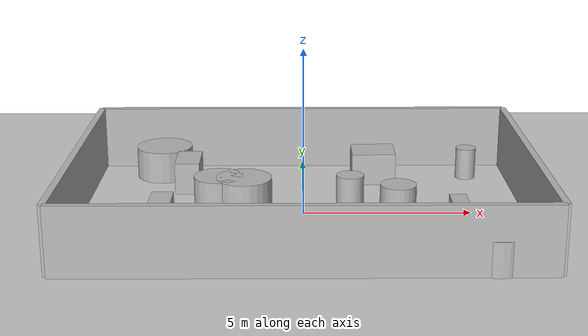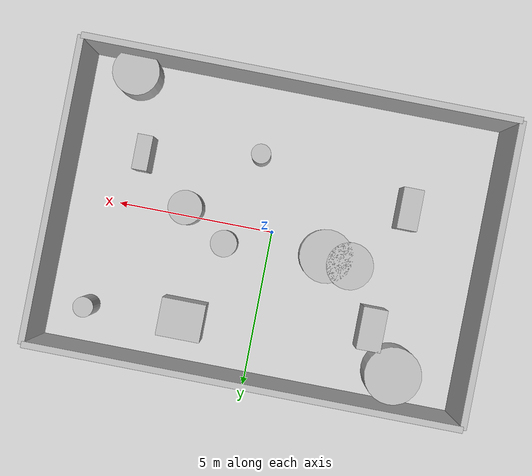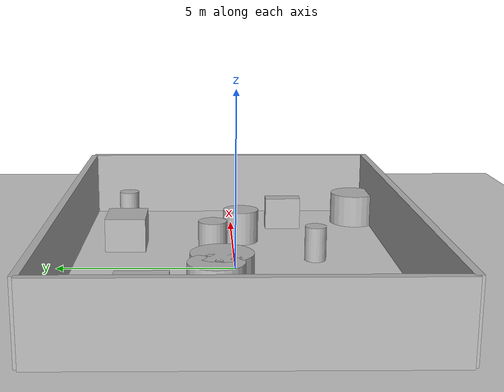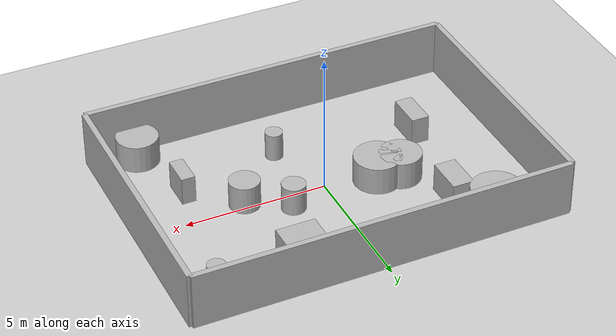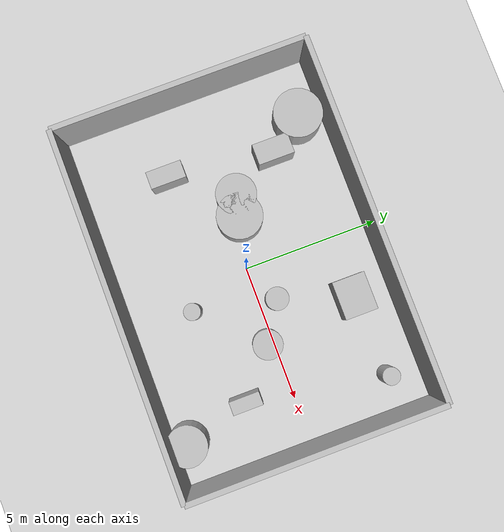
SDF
<?xml version="1.0"?>
<sdf version="1.6">
  <world name="env_75">

    <include><uri>model://ground_plane</uri></include>
    <include><uri>model://sun</uri></include>

    <!-- WALLS -->
    <model name="wall_north"><static>true</static><pose>0 4.67871305353184 1 0 0 0</pose>
      <link name="link"><collision name="collision">
        <geometry><box><size>13.373360814417476 0.2 2</size></box></geometry>
      </collision><visual name="visual">
        <geometry><box><size>13.373360814417476 0.2 2</size></box></geometry>
      </visual></link>
    </model>

    <model name="wall_south"><static>true</static><pose>0 -4.67871305353184 1 0 0 0</pose>
      <link name="link"><collision name="collision">
        <geometry><box><size>13.373360814417476 0.2 2</size></box></geometry>
      </collision><visual name="visual">
        <geometry><box><size>13.373360814417476 0.2 2</size></box></geometry>
      </visual></link>
    </model>

    <model name="wall_east"><static>true</static><pose>6.686680407208738 0 1 0 0 1.57</pose>
      <link name="link"><collision name="collision">
        <geometry><box><size>9.35742610706368 0.2 2</size></box></geometry>
      </collision><visual name="visual">
        <geometry><box><size>9.35742610706368 0.2 2</size></box></geometry>
      </visual></link>
    </model>

    <model name="wall_west"><static>true</static><pose>-6.686680407208738 0 1 0 0 1.57</pose>
      <link name="link"><collision name="collision">
        <geometry><box><size>9.35742610706368 0.2 2</size></box></geometry>
      </collision><visual name="visual">
        <geometry><box><size>9.35742610706368 0.2 2</size></box></geometry>
      </visual></link>
    </model>

    <!-- SENSOR -->

    <model name="lidar_sensor">
      <static>true</static>
      <pose>-0.8095029173299659 1.8671129752514792 0.4 0 0 0</pose>
      <link name="link">
        <sensor name="lidar" type="ray">
          <pose>0 0 0 0 0 0</pose>
          <visualize>true</visualize>
          <always_on>true</always_on>
          <update_rate>10</update_rate>
          <ray>
            <scan><horizontal>
              <samples>90</samples>
              <resolution>1</resolution>
              <min_angle>-3.14159</min_angle>
              <max_angle>3.14159</max_angle>
            </horizontal></scan>
            <range><min>0.15</min><max>20.0</max><resolution>0.01</resolution></range>
          </ray>
          <plugin name="lidar_plugin" filename="liblidar_plugin.so"/>
        </sensor>
      </link>
    </model>

    <!-- OBSTACLES -->

    <model name="obstacle_0">
      <static>true</static>
      <pose>4.423273611558591 -1.6711160250259782 0.5 0 0 0</pose>
      <link name="link">
        <collision name="collision">
          <geometry><box><size>0.49 1.11 1.0</size></box></geometry>
        </collision>
        <visual name="visual">
          <geometry><box><size>0.49 1.11 1.0</size></box></geometry>
        </visual>
      </link>
    </model>

    <model name="obstacle_1">
      <static>true</static>
      <pose>5.3165221420071545 3.3880285453723706 0.5 0 0 0</pose>
      <link name="link">
        <collision name="collision">
          <geometry><cylinder><radius>0.32</radius><length>1.0</length></cylinder></geometry>
        </collision>
        <visual name="visual">
          <geometry><cylinder><radius>0.32</radius><length>1.0</length></cylinder></geometry>
        </visual>
      </link>
    </model>

    <model name="obstacle_2">
      <static>true</static>
      <pose>5.089217015884061 -4.098215941071365 0.5 0 0 0</pose>
      <link name="link">
        <collision name="collision">
          <geometry><cylinder><radius>0.74</radius><length>1.0</length></cylinder></geometry>
        </collision>
        <visual name="visual">
          <geometry><cylinder><radius>0.74</radius><length>1.0</length></cylinder></geometry>
        </visual>
      </link>
    </model>

    <model name="obstacle_3">
      <static>true</static>
      <pose>-2.568197069634792 0.5668370713531266 0.5 0 0 0</pose>
      <link name="link">
        <collision name="collision">
          <geometry><cylinder><radius>0.74</radius><length>1.0</length></cylinder></geometry>
        </collision>
        <visual name="visual">
          <geometry><cylinder><radius>0.74</radius><length>1.0</length></cylinder></geometry>
        </visual>
      </link>
    </model>

    <model name="obstacle_4">
      <static>true</static>
      <pose>2.2658794781718443 3.2075313518781954 0.5 0 0 0</pose>
      <link name="link">
        <collision name="collision">
          <geometry><box><size>1.39 1.2 1.0</size></box></geometry>
        </collision>
        <visual name="visual">
          <geometry><box><size>1.39 1.2 1.0</size></box></geometry>
        </visual>
      </link>
    </model>

    <model name="obstacle_5">
      <static>true</static>
      <pose>0.7976306641802973 -2.330478300109095 0.5 0 0 0</pose>
      <link name="link">
        <collision name="collision">
          <geometry><cylinder><radius>0.31</radius><length>1.0</length></cylinder></geometry>
        </collision>
        <visual name="visual">
          <geometry><cylinder><radius>0.31</radius><length>1.0</length></cylinder></geometry>
        </visual>
      </link>
    </model>

    <model name="obstacle_6">
      <static>true</static>
      <pose>-4.527372286801009 3.6574914833198298 0.5 0 0 0</pose>
      <link name="link">
        <collision name="collision">
          <geometry><cylinder><radius>0.9</radius><length>1.0</length></cylinder></geometry>
        </collision>
        <visual name="visual">
          <geometry><cylinder><radius>0.9</radius><length>1.0</length></cylinder></geometry>
        </visual>
      </link>
    </model>

    <model name="obstacle_7">
      <static>true</static>
      <pose>2.7953048681051547 -0.24794187163784898 0.5 0 0 0</pose>
      <link name="link">
        <collision name="collision">
          <geometry><cylinder><radius>0.54</radius><length>1.0</length></cylinder></geometry>
        </collision>
        <visual name="visual">
          <geometry><cylinder><radius>0.54</radius><length>1.0</length></cylinder></geometry>
        </visual>
      </link>
    </model>

    <model name="obstacle_8">
      <static>true</static>
      <pose>-1.790550819072207 0.40735482751317686 0.5 0 0 0</pose>
      <link name="link">
        <collision name="collision">
          <geometry><cylinder><radius>0.84</radius><length>1.0</length></cylinder></geometry>
        </collision>
        <visual name="visual">
          <geometry><cylinder><radius>0.84</radius><length>1.0</length></cylinder></geometry>
        </visual>
      </link>
    </model>

    <model name="obstacle_9">
      <static>true</static>
      <pose>-3.62478182242103 2.3706579780525887 0.5 0 0 0</pose>
      <link name="link">
        <collision name="collision">
          <geometry><box><size>0.77 1.34 1.0</size></box></geometry>
        </collision>
        <visual name="visual">
          <geometry><box><size>0.77 1.34 1.0</size></box></geometry>
        </visual>
      </link>
    </model>

    <model name="obstacle_10">
      <static>true</static>
      <pose>-4.082652220174621 -1.526924671552102 0.5 0 0 0</pose>
      <link name="link">
        <collision name="collision">
          <geometry><box><size>0.64 1.31 1.0</size></box></geometry>
        </collision>
        <visual name="visual">
          <geometry><box><size>0.64 1.31 1.0</size></box></geometry>
        </visual>
      </link>
    </model>

    <model name="obstacle_11">
      <static>true</static>
      <pose>1.409438808047593 0.6244627907259588 0.5 0 0 0</pose>
      <link name="link">
        <collision name="collision">
          <geometry><cylinder><radius>0.42</radius><length>1.0</length></cylinder></geometry>
        </collision>
        <visual name="visual">
          <geometry><cylinder><radius>0.42</radius><length>1.0</length></cylinder></geometry>
        </visual>
      </link>
    </model>

  </world>
</sdf>
